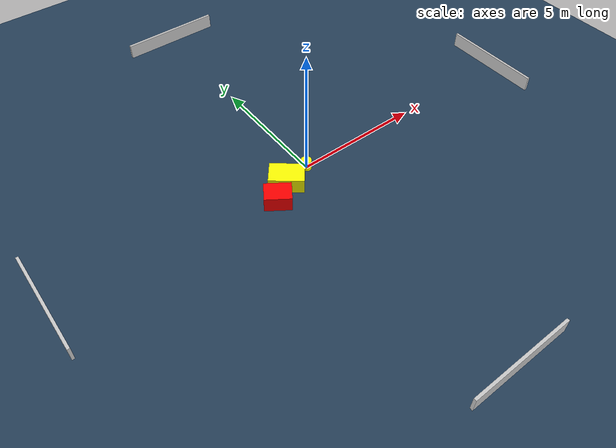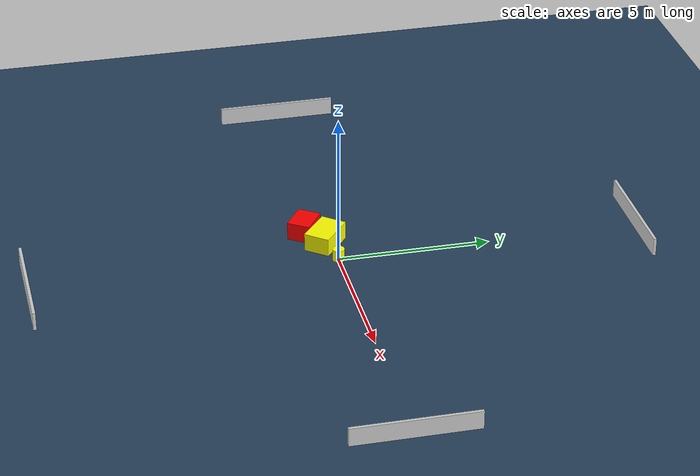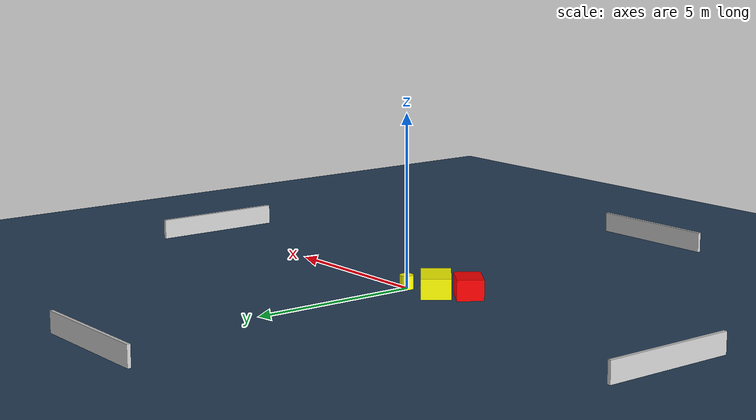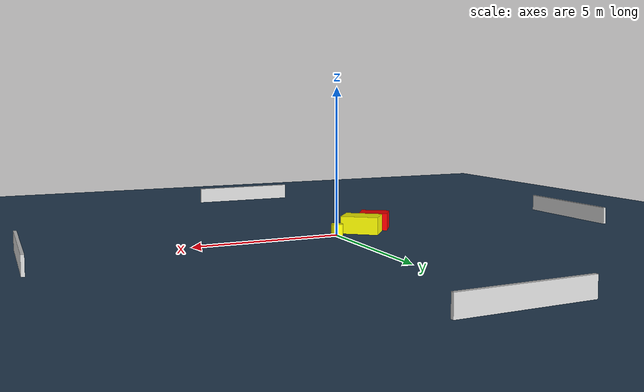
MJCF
<?xml version="1.0" ?>
<mujoco model="generated_environment">
  <option timestep="0.01" integrator="RK4" cone="elliptic"/>
  <default>
    <geom density="1"/>
  </default>
  <asset>
    <texture builtin="gradient" height="3072" name="skybox" rgb1="0.3 0.5 0.7" rgb2="0 0 0" type="skybox" width="512"/>
    <texture builtin="checker" height="300" name="groundplane" rgb1="0.2 0.3 0.4" rgb2="0.1 0.2 0.3" type="2d" width="300"/>
    <material name="groundplane" reflectance="0.2" texrepeat="5 5" texture="groundplane"/>
  </asset>
  <worldbody>
    <light dir="0 0 -1" directional="true" pos="0 0 1.5"/>
    <geom condim="3" friction="0.5 0.005 0.001" material="groundplane" name="floor" pos="0 0 0" size="0 0 0.05" type="plane"/>
    <body name="walls">
      <geom name="wall_1" condim="4" pos="-10.0 0.0 0.3" rgba="0.800000011920929 0.800000011920929 0.800000011920929 1.0" size="0.05 2.0 0.3" type="box"/>
      <geom name="wall_2" condim="4" pos="10.0 0.0 0.3" rgba="0.800000011920929 0.800000011920929 0.800000011920929 1.0" size="0.05 2.0 0.3" type="box"/>
      <geom name="wall_3" condim="4" pos="0.0 -10.0 0.3" rgba="0.800000011920929 0.800000011920929 0.800000011920929 1.0" size="2.0 0.05 0.3" type="box"/>
      <geom name="wall_4" condim="4" pos="0.0 10.0 0.3" rgba="0.800000011920929 0.800000011920929 0.800000011920929 1.0" size="2.0 0.05 0.3" type="box"/>
    </body>
    <body name="robot">
      <joint name="joint_x" type="slide" pos="0 0 0" axis="1 0 0"/>
      <joint name="joint_y" type="slide" pos="0 0 0" axis="0 1 0"/>
      <geom name="robot" type="cylinder" pos="0.0 0.0 0.2" size="0.2 0.2 0.0" mass="5.0" friction="1.0 0.005 0.0001" condim="4" rgba="1.0 1.0 0.0 1.0"/>
    </body>
    <body name="obstacle_1_movable">
      <geom name="obstacle_1_movable" condim="4" pos="-1.0441579661288494 -0.21014974387207344 0.3" euler="0 0 321.23796568494237" friction="0.0 0.005 0.001" rgba="1.0 1.0 0.0 1.0" size="0.6443750907615179 0.4312146975089782 0.3" type="box" mass="0.1"/>
      <joint type="free"/>
    </body>
    <body name="obstacle_2_static">
      <geom name="obstacle_2_static" condim="4" pos="-1.8201344891807103 -0.7497295895383896 0.3" euler="0 0 55.74599259521847" friction="0.0 0.005 0.001" rgba="1.0 0.0 0.0 1.0" size="0.3811060489417806 0.4964435760683992 0.3" type="box"/>
    </body>
  </worldbody>
  <actuator>
    <motor name="actuator_x" joint="joint_x" gear="1" ctrlrange="-1 1"/>
    <motor name="actuator_y" joint="joint_y" gear="1" ctrlrange="-1 1"/>
  </actuator>
</mujoco>
